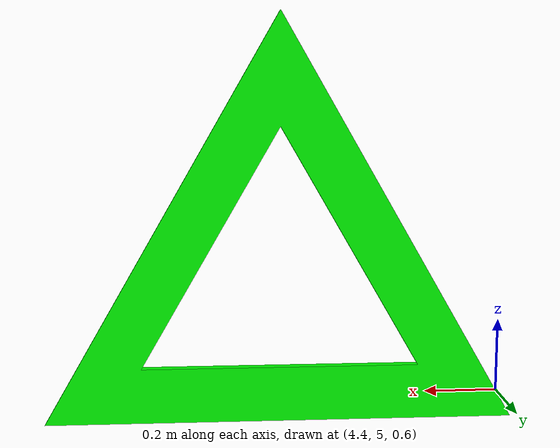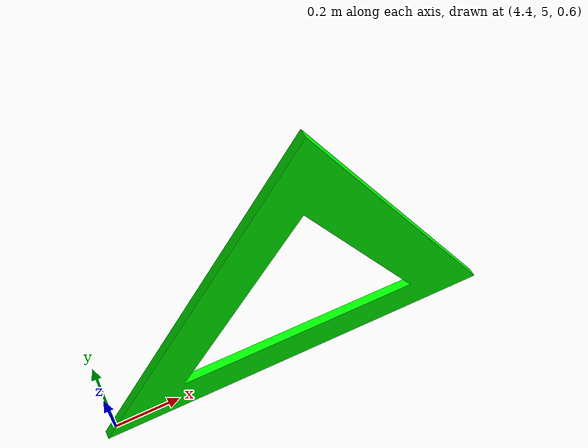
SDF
<?xml version="1.0" ?>
<sdf version="1.6">
  <model name='gate_triangle_small_green'>
    <static>1</static>
    <pose frame=''>5 5 0 0 0 0</pose>
    <link name='gate_triangle_small_green'>
      <visual name='gate'>
        <geometry>
          <mesh>
            <uri>/home/sim/ardupilot_docker/catkin_ws/src/drone_sim/models/gate_triangle_small_green/gate_triangle_small_green.dae</uri>
          </mesh>
        </geometry>
      </visual>
      <collision name='gate_collision_1'>
        <geometry>
          <mesh>
            <uri>/home/sim/ardupilot_docker/catkin_ws/src/drone_sim/models/gate_triangle_small_green/gate_triangle_small_green.dae</uri>
          </mesh>
        </geometry>
        <max_contacts>10</max_contacts>
        <surface>
          <contact>
            <ode/>
          </contact>
          <bounce/>
          <friction>
            <torsional>
              <ode/>
            </torsional>
            <ode/>
          </friction>
        </surface>
      </collision>
      <self_collide>0</self_collide>
      <enable_wind>0</enable_wind>
      <kinematic>0</kinematic>
    </link>
  </model>
</sdf>
